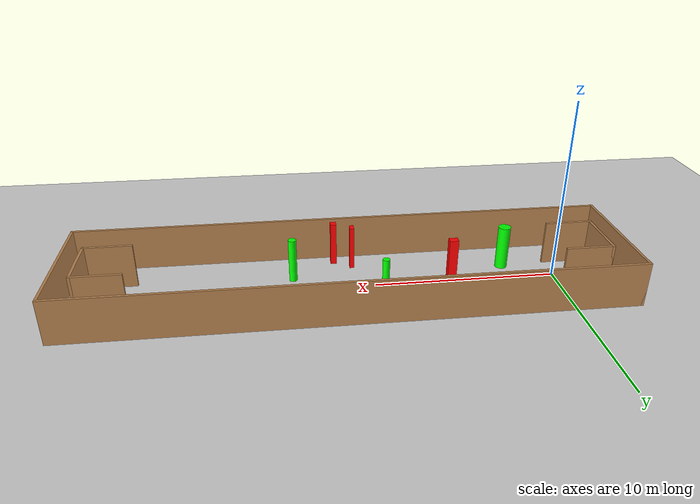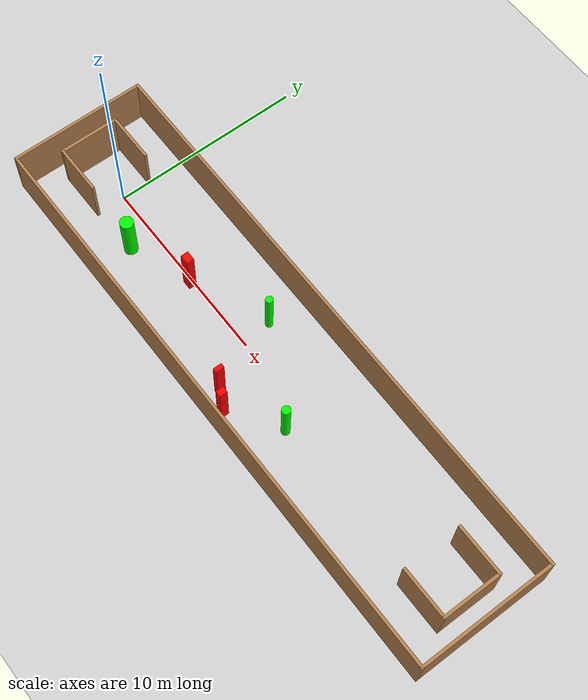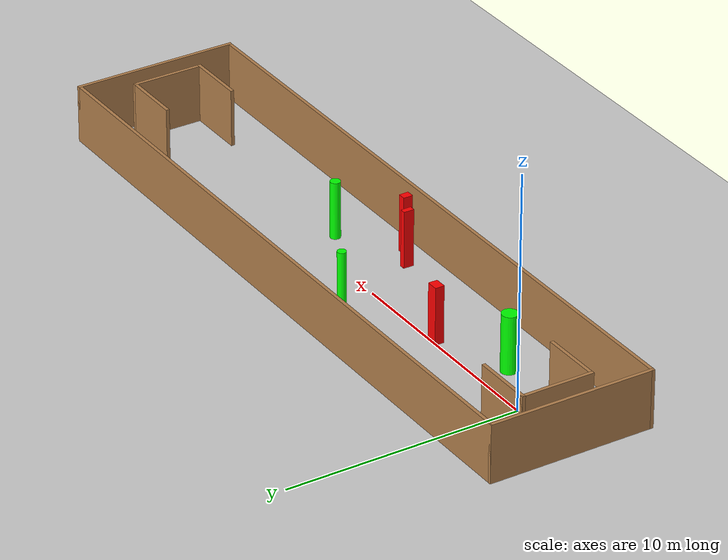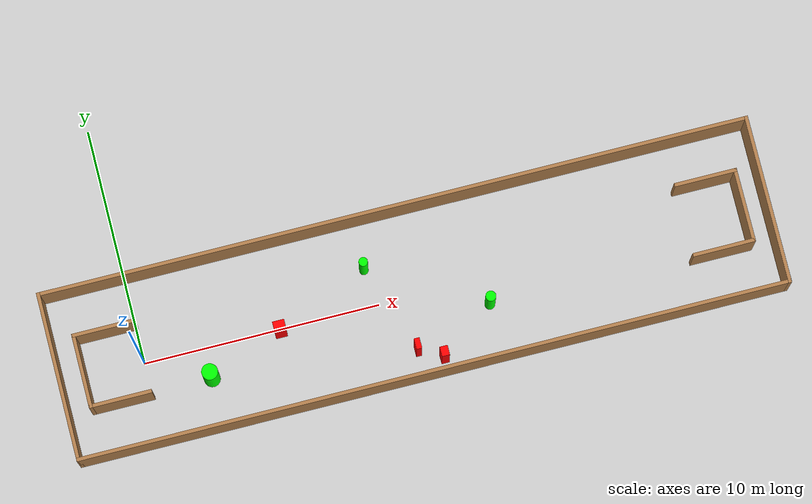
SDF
<sdf version="1.7">
 <world name="default">
  <light name="sun" type="directional">
   <pose>0 0 10 0 -0 0</pose>
   <diffuse>0.8 0.8 0.8 1</diffuse>
   <specular>0.2 0.2 0.2 1</specular>
   <attenuation>
    <range>1000</range>
    <constant>0.9</constant>
    <linear>0.01</linear>
    <quadratic>0.001</quadratic>
   </attenuation>
   <direction>-0.5 0.1 -0.9</direction>
   <spot><inner_angle>0</inner_angle><outer_angle>0</outer_angle><falloff>0</falloff></spot>
  </light>
  <model name="ground_plane">
   <static>1</static>
   <link name="link">
    <collision name="collision">
     <geometry><plane><normal>0 0 1</normal><size>100 100</size></plane></geometry>
     <surface>
      <contact><collide_bitmask>65535</collide_bitmask></contact>
      <friction><ode><mu>100</mu><mu2>50</mu2></ode></friction>
     </surface>
    </collision>
    <visual name="visual">
     <cast_shadows>0</cast_shadows>
     <geometry><plane><normal>0 0 1</normal><size>100 100</size></plane></geometry>
     <material>
      <script><uri>file://media/materials/scripts/gazebo.material</uri><name>Gazebo/Grey</name></script>
     </material>
    </visual>
   </link>
  </model>
  <gravity>0 0 -9.8</gravity>
  <magnetic_field>6e-06 2.3e-05 -4.2e-05</magnetic_field>
  <atmosphere type="adiabatic"/>
  <physics type="ode">
   <max_step_size>0.001</max_step_size>
   <real_time_factor>1</real_time_factor>
   <real_time_update_rate>1000</real_time_update_rate>
  </physics>
  <scene><ambient>0.4 0.4 0.4 1</ambient><background>0.7 0.7 0.7 1</background><shadows>1</shadows></scene>
  <spherical_coordinates>
   <surface_model>EARTH_WGS84</surface_model>
   <latitude_deg>0</latitude_deg>
   <longitude_deg>0</longitude_deg>
   <elevation>0</elevation>
   <heading_deg>0</heading_deg>
  </spherical_coordinates>
  <model name="my_base_walls">
   <link name="Wall_0">
    <collision name="Wall_0_Collision">
     <geometry><box><size>7.15 0.15 2.5</size></box></geometry>
     <pose>0 0 1.25 0 -0 0</pose>
    </collision>
    <visual name="Wall_0_Visual">
     <pose>0 0 1.25 0 -0 0</pose>
     <geometry><box><size>7.15 0.15 2.5</size></box></geometry>
     <material>
      <script><uri>file://media/materials/scripts/gazebo.material</uri><name>Gazebo/Wood</name></script>
      <ambient>1 1 1 1</ambient>
     </material>
     <meta><layer>0</layer></meta>
    </visual>
    <pose>-15 0 0 0 -0 1.5708</pose>
   </link>
   <link name="Wall_10">
    <collision name="Wall_10_Collision">
     <geometry><box><size>2.65 0.15 2.5</size></box></geometry>
     <pose>0 0 1.25 0 -0 0</pose>
    </collision>
    <visual name="Wall_10_Visual">
     <pose>0 0 1.25 0 -0 0</pose>
     <geometry><box><size>2.65 0.15 2.5</size></box></geometry>
     <material>
      <script><uri>file://media/materials/scripts/gazebo.material</uri><name>Gazebo/Wood</name></script>
      <ambient>1 1 1 1</ambient>
     </material>
     <meta><layer>0</layer></meta>
    </visual>
    <pose>-12.75 -1.5 0 0 -0 0</pose>
   </link>
   <link name="Wall_12">
    <collision name="Wall_12_Collision">
     <geometry><box><size>2.65 0.15 2.5</size></box></geometry>
     <pose>0 0 1.25 0 -0 0</pose>
    </collision>
    <visual name="Wall_12_Visual">
     <pose>0 0 1.25 0 -0 0</pose>
     <geometry><box><size>2.65 0.15 2.5</size></box></geometry>
     <material>
      <script><uri>file://media/materials/scripts/gazebo.material</uri><name>Gazebo/Wood</name></script>
      <ambient>1 1 1 1</ambient>
     </material>
     <meta><layer>0</layer></meta>
    </visual>
    <pose>-12.75 1.5 0 0 -0 0</pose>
   </link>
   <link name="Wall_14">
    <collision name="Wall_14_Collision">
     <geometry><box><size>3.15 0.15 2.5</size></box></geometry>
     <pose>0 0 1.25 0 -0 0</pose>
    </collision>
    <visual name="Wall_14_Visual">
     <pose>0 0 1.25 0 -0 0</pose>
     <geometry><box><size>3.15 0.15 2.5</size></box></geometry>
     <material>
      <script><uri>file://media/materials/scripts/gazebo.material</uri><name>Gazebo/Wood</name></script>
      <ambient>1 1 1 1</ambient>
     </material>
     <meta><layer>0</layer></meta>
    </visual>
    <pose>14 0 0 0 -0 -1.5708</pose>
   </link>
   <link name="Wall_15">
    <collision name="Wall_15_Collision">
     <geometry><box><size>2.65 0.15 2.5</size></box></geometry>
     <pose>0 0 1.25 0 -0 0</pose>
    </collision>
    <visual name="Wall_15_Visual">
     <pose>0 0 1.25 0 -0 0</pose>
     <geometry><box><size>2.65 0.15 2.5</size></box></geometry>
     <material>
      <script><uri>file://media/materials/scripts/gazebo.material</uri><name>Gazebo/Wood</name></script>
      <ambient>1 1 1 1</ambient>
     </material>
     <meta><layer>0</layer></meta>
    </visual>
    <pose>12.75 -1.5 0 0 -0 3.14159</pose>
   </link>
   <link name="Wall_17">
    <collision name="Wall_17_Collision">
     <geometry><box><size>2.65 0.15 2.5</size></box></geometry>
     <pose>0 0 1.25 0 -0 0</pose>
    </collision>
    <visual name="Wall_17_Visual">
     <pose>0 0 1.25 0 -0 0</pose>
     <geometry><box><size>2.65 0.15 2.5</size></box></geometry>
     <material>
      <script><uri>file://media/materials/scripts/gazebo.material</uri><name>Gazebo/Wood</name></script>
      <ambient>1 1 1 1</ambient>
     </material>
     <meta><layer>0</layer></meta>
    </visual>
    <pose>12.75 1.5 0 0 -0 3.14159</pose>
   </link>
   <link name="Wall_2">
    <collision name="Wall_2_Collision">
     <geometry><box><size>30.15 0.15 2.5</size></box></geometry>
     <pose>0 0 1.25 0 -0 0</pose>
    </collision>
    <visual name="Wall_2_Visual">
     <pose>0 0 1.25 0 -0 0</pose>
     <geometry><box><size>30.15 0.15 2.5</size></box></geometry>
     <material>
      <script><uri>file://media/materials/scripts/gazebo.material</uri><name>Gazebo/Wood</name></script>
      <ambient>1 1 1 1</ambient>
     </material>
     <meta><layer>0</layer></meta>
    </visual>
    <pose>-0 -3.5 0 0 -0 0</pose>
   </link>
   <link name="Wall_4">
    <collision name="Wall_4_Collision">
     <geometry><box><size>30.15 0.15 2.5</size></box></geometry>
     <pose>0 0 1.25 0 -0 0</pose>
    </collision>
    <visual name="Wall_4_Visual">
     <pose>0 0 1.25 0 -0 0</pose>
     <geometry><box><size>30.15 0.15 2.5</size></box></geometry>
     <material>
      <script><uri>file://media/materials/scripts/gazebo.material</uri><name>Gazebo/Wood</name></script>
      <ambient>1 1 1 1</ambient>
     </material>
     <meta><layer>0</layer></meta>
    </visual>
    <pose>-0 3.5 0 0 -0 0</pose>
   </link>
   <link name="Wall_6">
    <collision name="Wall_6_Collision">
     <geometry><box><size>7.15 0.15 2.5</size></box></geometry>
     <pose>0 0 1.25 0 -0 0</pose>
    </collision>
    <visual name="Wall_6_Visual">
     <pose>0 0 1.25 0 -0 0</pose>
     <geometry><box><size>7.15 0.15 2.5</size></box></geometry>
     <material>
      <script><uri>file://media/materials/scripts/gazebo.material</uri><name>Gazebo/Wood</name></script>
      <ambient>1 1 1 1</ambient>
     </material>
     <meta><layer>0</layer></meta>
    </visual>
    <pose>15 0 0 0 -0 -1.5708</pose>
   </link>
   <link name="Wall_9">
    <collision name="Wall_9_Collision">
     <geometry><box><size>3.15 0.15 2.5</size></box></geometry>
     <pose>0 0 1.25 0 -0 0</pose>
    </collision>
    <visual name="Wall_9_Visual">
     <pose>0 0 1.25 0 -0 0</pose>
     <geometry><box><size>3.15 0.15 2.5</size></box></geometry>
     <material>
      <script><uri>file://media/materials/scripts/gazebo.material</uri><name>Gazebo/Wood</name></script>
      <ambient>1 1 1 1</ambient>
     </material>
     <meta><layer>0</layer></meta>
    </visual>
    <pose>-14 0 0 0 -0 -1.5708</pose>
   </link>
   <static>1</static>
   <pose>11.5 0 0 0 -0 0</pose>
  </model>
  <model name="cylinder1">
   <static>1</static>
   <link name="link">
    <inertial>
     <mass>1</mass>
     <inertia><ixx>0.5</ixx><ixy>0</ixy><ixz>0</ixz><iyy>0.5</iyy><iyz>0</iyz><izz>1</izz></inertia>
    </inertial>
    <collision name="collision">
     <geometry><cylinder><radius>0.34112493447014564</radius><length>2.5</length></cylinder></geometry>
    </collision>
    <visual name="visual">
     <geometry><cylinder><radius>0.34112493447014564</radius><length>2.5</length></cylinder></geometry>
     <material>
      <ambient>0 1 0 1</ambient>
      <diffuse>0 1 0 1</diffuse>
      <specular>0.1 0.1 0.1 1</specular>
      <emissive>0 0 0 0</emissive>
     </material>
    </visual>
   </link>
   <pose>2.5526816378363506 -1.315132312548283 1.25 0 0 0</pose>
  </model>
  <model name="cylinder2">
   <static>1</static>
   <link name="link">
    <inertial>
     <mass>1</mass>
     <inertia><ixx>0.5</ixx><ixy>0</ixy><ixz>0</ixz><iyy>0.5</iyy><iyz>0</iyz><izz>1</izz></inertia>
    </inertial>
    <collision name="collision">
     <geometry><cylinder><radius>0.18891463464502103</radius><length>2.5</length></cylinder></geometry>
    </collision>
    <visual name="visual">
     <geometry><cylinder><radius>0.18891463464502103</radius><length>2.5</length></cylinder></geometry>
     <material>
      <ambient>0 1 0 1</ambient>
      <diffuse>0 1 0 1</diffuse>
      <specular>0.1 0.1 0.1 1</specular>
      <emissive>0 0 0 0</emissive>
     </material>
    </visual>
   </link>
   <pose>9.73920483888772 1.5493790488065011 1.25 0 0 0</pose>
  </model>
  <model name="cylinder3">
   <static>1</static>
   <link name="link">
    <inertial>
     <mass>1</mass>
     <inertia><ixx>0.5</ixx><ixy>0</ixy><ixz>0</ixz><iyy>0.5</iyy><iyz>0</iyz><izz>1</izz></inertia>
    </inertial>
    <collision name="collision">
     <geometry><cylinder><radius>0.21914077696487122</radius><length>2.5</length></cylinder></geometry>
    </collision>
    <visual name="visual">
     <geometry><cylinder><radius>0.21914077696487122</radius><length>2.5</length></cylinder></geometry>
     <material>
      <ambient>0 1 0 1</ambient>
      <diffuse>0 1 0 1</diffuse>
      <specular>0.1 0.1 0.1 1</specular>
      <emissive>0 0 0 0</emissive>
     </material>
    </visual>
   </link>
   <pose>14.465907884252918 -1.105780370284184 1.25 0 0 0</pose>
  </model>
  <model name="box1">
   <static>1</static>
   <link name="link">
    <inertial>
     <mass>1</mass>
     <inertia><ixx>0.083</ixx><ixy>0</ixy><ixz>0</ixz><iyy>0.083</iyy><iyz>0</iyz><izz>0.083</izz></inertia>
    </inertial>
    <collision name="collision">
     <geometry><box><size>0.2373822989692189 0.4510501517022335 2.5</size></box></geometry>
    </collision>
    <visual name="visual">
     <geometry><box><size>0.2373822989692189 0.4510501517022335 2.5</size></box></geometry>
     <material>
      <ambient>1 0 0 1</ambient>
      <diffuse>1 0 0 1</diffuse>
      <specular>0.1 0.1 0.1 1</specular>
      <emissive>0 0 0 0</emissive>
     </material>
    </visual>
    <sensor name="my_contact" type="contact">
     <contact><collision>box_collision</collision><topic>__default_topic__</topic></contact>
    </sensor>
   </link>
   <pose>11.089618064491827 -2.269272697185842 1.25 0 0 0</pose>
  </model>
  <model name="box2">
   <static>1</static>
   <link name="link">
    <inertial>
     <mass>1</mass>
     <inertia><ixx>0.083</ixx><ixy>0</ixy><ixz>0</ixz><iyy>0.083</iyy><iyz>0</iyz><izz>0.083</izz></inertia>
    </inertial>
    <collision name="collision">
     <geometry><box><size>0.4939868595118247 0.3959276388126741 2.5</size></box></geometry>
    </collision>
    <visual name="visual">
     <geometry><box><size>0.4939868595118247 0.3959276388126741 2.5</size></box></geometry>
     <material>
      <ambient>1 0 0 1</ambient>
      <diffuse>1 0 0 1</diffuse>
      <specular>0.1 0.1 0.1 1</specular>
      <emissive>0 0 0 0</emissive>
     </material>
    </visual>
    <sensor name="my_contact" type="contact">
     <contact><collision>box_collision</collision><topic>__default_topic__</topic></contact>
    </sensor>
   </link>
   <pose>5.768792246743496 -0.14855122614160976 1.25 0 0 0</pose>
  </model>
  <model name="box3">
   <static>1</static>
   <link name="link">
    <inertial>
     <mass>1</mass>
     <inertia><ixx>0.083</ixx><ixy>0</ixy><ixz>0</ixz><iyy>0.083</iyy><iyz>0</iyz><izz>0.083</izz></inertia>
    </inertial>
    <collision name="collision">
     <geometry><box><size>0.32893750956859574 0.4092021262373391 2.5</size></box></geometry>
    </collision>
    <visual name="visual">
     <geometry><box><size>0.32893750956859574 0.4092021262373391 2.5</size></box></geometry>
     <material>
      <ambient>1 0 0 1</ambient>
      <diffuse>1 0 0 1</diffuse>
      <specular>0.1 0.1 0.1 1</specular>
      <emissive>0 0 0 0</emissive>
     </material>
    </visual>
    <sensor name="my_contact" type="contact">
     <contact><collision>box_collision</collision><topic>__default_topic__</topic></contact>
    </sensor>
   </link>
   <pose>12.078689680977321 -2.8358682265138833 1.25 0 0 0</pose>
  </model>
 </world>
</sdf>
